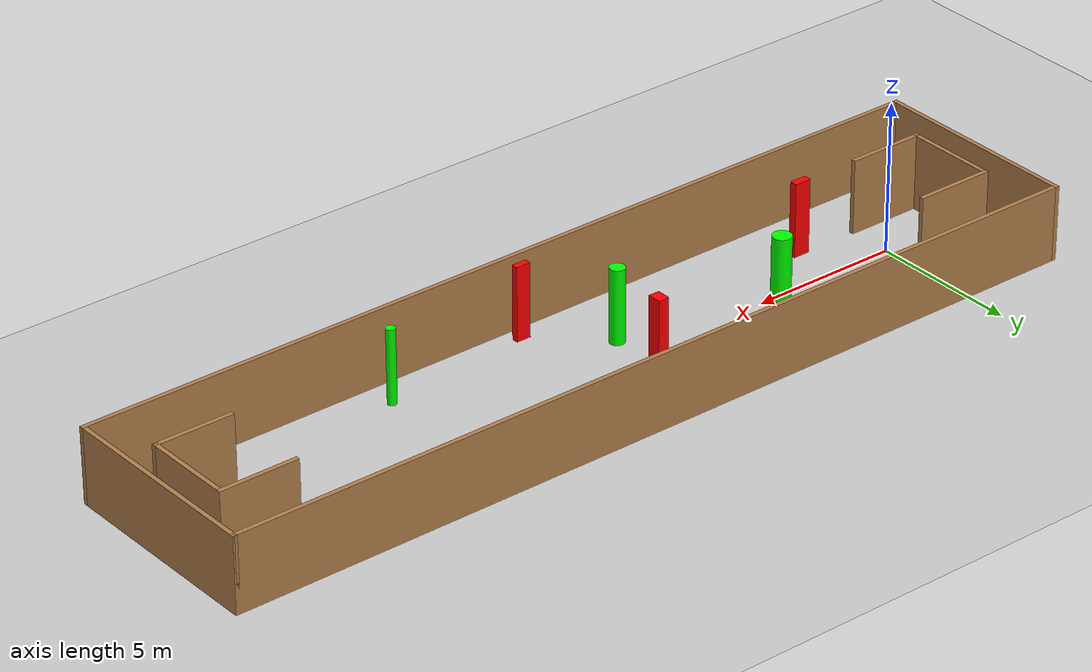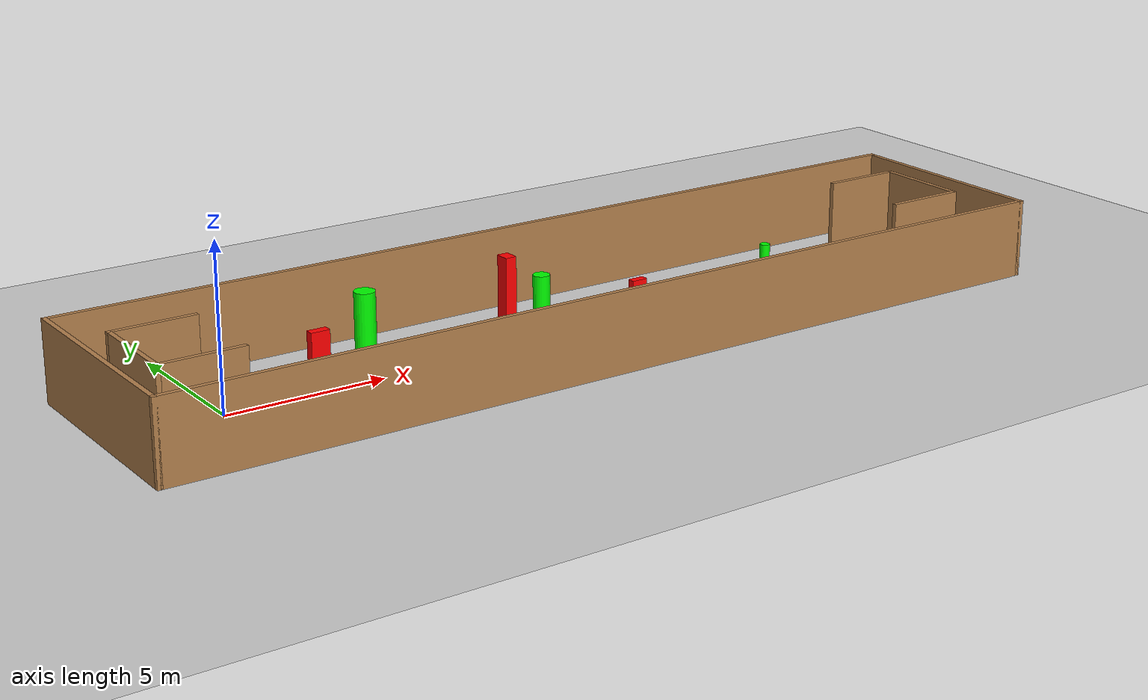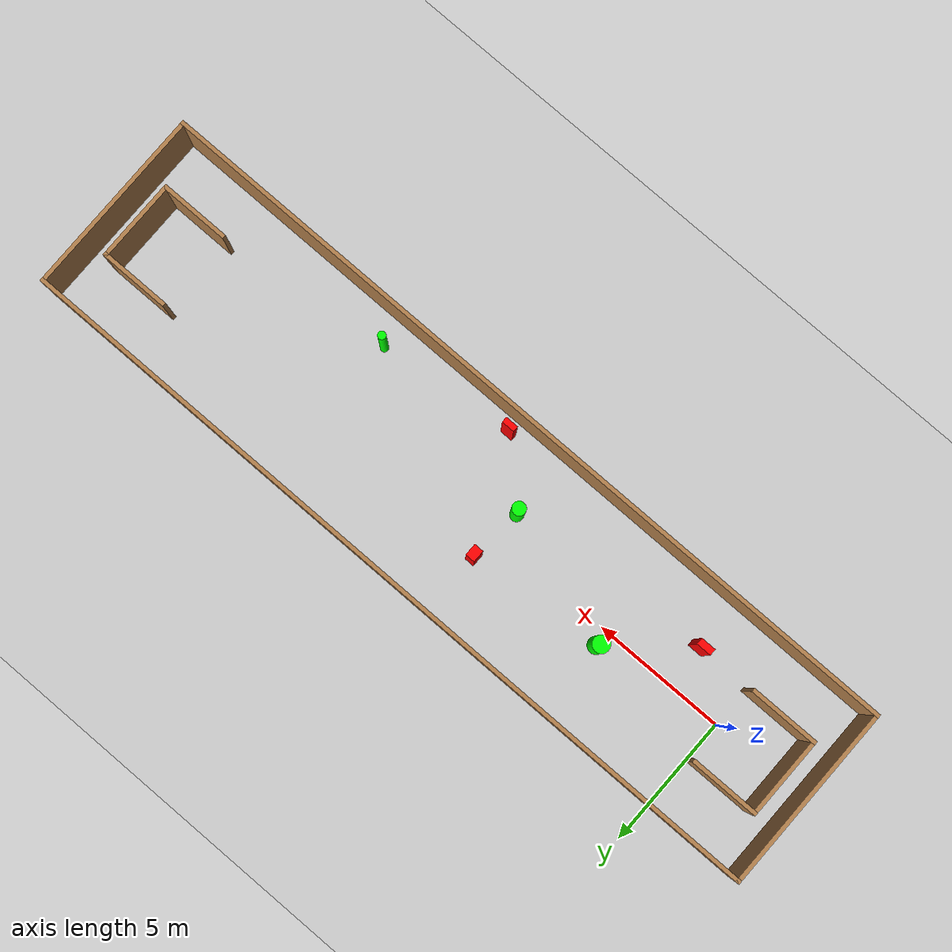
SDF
<sdf version="1.7">
 <world name="default">
  <light name="sun" type="directional">
   <pose>0 0 10 0 -0 0</pose>
   <diffuse>0.8 0.8 0.8 1</diffuse>
   <specular>0.2 0.2 0.2 1</specular>
   <attenuation>
    <range>1000</range>
    <constant>0.9</constant>
    <linear>0.01</linear>
    <quadratic>0.001</quadratic>
   </attenuation>
   <direction>-0.5 0.1 -0.9</direction>
   <spot><inner_angle>0</inner_angle><outer_angle>0</outer_angle><falloff>0</falloff></spot>
  </light>
  <model name="ground_plane">
   <static>1</static>
   <link name="link">
    <collision name="collision">
     <geometry><plane><normal>0 0 1</normal><size>100 100</size></plane></geometry>
     <surface>
      <contact><collide_bitmask>65535</collide_bitmask></contact>
      <friction><ode><mu>100</mu><mu2>50</mu2></ode></friction>
     </surface>
    </collision>
    <visual name="visual">
     <cast_shadows>0</cast_shadows>
     <geometry><plane><normal>0 0 1</normal><size>100 100</size></plane></geometry>
     <material>
      <script><uri>file://media/materials/scripts/gazebo.material</uri><name>Gazebo/Grey</name></script>
     </material>
    </visual>
   </link>
  </model>
  <gravity>0 0 -9.8</gravity>
  <magnetic_field>6e-06 2.3e-05 -4.2e-05</magnetic_field>
  <atmosphere type="adiabatic"/>
  <physics type="ode">
   <max_step_size>0.001</max_step_size>
   <real_time_factor>1</real_time_factor>
   <real_time_update_rate>1000</real_time_update_rate>
  </physics>
  <scene><ambient>0.4 0.4 0.4 1</ambient><background>0.7 0.7 0.7 1</background><shadows>1</shadows></scene>
  <spherical_coordinates>
   <surface_model>EARTH_WGS84</surface_model>
   <latitude_deg>0</latitude_deg>
   <longitude_deg>0</longitude_deg>
   <elevation>0</elevation>
   <heading_deg>0</heading_deg>
  </spherical_coordinates>
  <model name="my_base_walls">
   <link name="Wall_0">
    <collision name="Wall_0_Collision">
     <geometry><box><size>7.15 0.15 2.5</size></box></geometry>
     <pose>0 0 1.25 0 -0 0</pose>
    </collision>
    <visual name="Wall_0_Visual">
     <pose>0 0 1.25 0 -0 0</pose>
     <geometry><box><size>7.15 0.15 2.5</size></box></geometry>
     <material>
      <script><uri>file://media/materials/scripts/gazebo.material</uri><name>Gazebo/Wood</name></script>
      <ambient>1 1 1 1</ambient>
     </material>
     <meta><layer>0</layer></meta>
    </visual>
    <pose>-15 0 0 0 -0 1.5708</pose>
   </link>
   <link name="Wall_10">
    <collision name="Wall_10_Collision">
     <geometry><box><size>2.65 0.15 2.5</size></box></geometry>
     <pose>0 0 1.25 0 -0 0</pose>
    </collision>
    <visual name="Wall_10_Visual">
     <pose>0 0 1.25 0 -0 0</pose>
     <geometry><box><size>2.65 0.15 2.5</size></box></geometry>
     <material>
      <script><uri>file://media/materials/scripts/gazebo.material</uri><name>Gazebo/Wood</name></script>
      <ambient>1 1 1 1</ambient>
     </material>
     <meta><layer>0</layer></meta>
    </visual>
    <pose>-12.75 -1.5 0 0 -0 0</pose>
   </link>
   <link name="Wall_12">
    <collision name="Wall_12_Collision">
     <geometry><box><size>2.65 0.15 2.5</size></box></geometry>
     <pose>0 0 1.25 0 -0 0</pose>
    </collision>
    <visual name="Wall_12_Visual">
     <pose>0 0 1.25 0 -0 0</pose>
     <geometry><box><size>2.65 0.15 2.5</size></box></geometry>
     <material>
      <script><uri>file://media/materials/scripts/gazebo.material</uri><name>Gazebo/Wood</name></script>
      <ambient>1 1 1 1</ambient>
     </material>
     <meta><layer>0</layer></meta>
    </visual>
    <pose>-12.75 1.5 0 0 -0 0</pose>
   </link>
   <link name="Wall_14">
    <collision name="Wall_14_Collision">
     <geometry><box><size>3.15 0.15 2.5</size></box></geometry>
     <pose>0 0 1.25 0 -0 0</pose>
    </collision>
    <visual name="Wall_14_Visual">
     <pose>0 0 1.25 0 -0 0</pose>
     <geometry><box><size>3.15 0.15 2.5</size></box></geometry>
     <material>
      <script><uri>file://media/materials/scripts/gazebo.material</uri><name>Gazebo/Wood</name></script>
      <ambient>1 1 1 1</ambient>
     </material>
     <meta><layer>0</layer></meta>
    </visual>
    <pose>14 0 0 0 -0 -1.5708</pose>
   </link>
   <link name="Wall_15">
    <collision name="Wall_15_Collision">
     <geometry><box><size>2.65 0.15 2.5</size></box></geometry>
     <pose>0 0 1.25 0 -0 0</pose>
    </collision>
    <visual name="Wall_15_Visual">
     <pose>0 0 1.25 0 -0 0</pose>
     <geometry><box><size>2.65 0.15 2.5</size></box></geometry>
     <material>
      <script><uri>file://media/materials/scripts/gazebo.material</uri><name>Gazebo/Wood</name></script>
      <ambient>1 1 1 1</ambient>
     </material>
     <meta><layer>0</layer></meta>
    </visual>
    <pose>12.75 -1.5 0 0 -0 3.14159</pose>
   </link>
   <link name="Wall_17">
    <collision name="Wall_17_Collision">
     <geometry><box><size>2.65 0.15 2.5</size></box></geometry>
     <pose>0 0 1.25 0 -0 0</pose>
    </collision>
    <visual name="Wall_17_Visual">
     <pose>0 0 1.25 0 -0 0</pose>
     <geometry><box><size>2.65 0.15 2.5</size></box></geometry>
     <material>
      <script><uri>file://media/materials/scripts/gazebo.material</uri><name>Gazebo/Wood</name></script>
      <ambient>1 1 1 1</ambient>
     </material>
     <meta><layer>0</layer></meta>
    </visual>
    <pose>12.75 1.5 0 0 -0 3.14159</pose>
   </link>
   <link name="Wall_2">
    <collision name="Wall_2_Collision">
     <geometry><box><size>30.15 0.15 2.5</size></box></geometry>
     <pose>0 0 1.25 0 -0 0</pose>
    </collision>
    <visual name="Wall_2_Visual">
     <pose>0 0 1.25 0 -0 0</pose>
     <geometry><box><size>30.15 0.15 2.5</size></box></geometry>
     <material>
      <script><uri>file://media/materials/scripts/gazebo.material</uri><name>Gazebo/Wood</name></script>
      <ambient>1 1 1 1</ambient>
     </material>
     <meta><layer>0</layer></meta>
    </visual>
    <pose>-0 -3.5 0 0 -0 0</pose>
   </link>
   <link name="Wall_4">
    <collision name="Wall_4_Collision">
     <geometry><box><size>30.15 0.15 2.5</size></box></geometry>
     <pose>0 0 1.25 0 -0 0</pose>
    </collision>
    <visual name="Wall_4_Visual">
     <pose>0 0 1.25 0 -0 0</pose>
     <geometry><box><size>30.15 0.15 2.5</size></box></geometry>
     <material>
      <script><uri>file://media/materials/scripts/gazebo.material</uri><name>Gazebo/Wood</name></script>
      <ambient>1 1 1 1</ambient>
     </material>
     <meta><layer>0</layer></meta>
    </visual>
    <pose>-0 3.5 0 0 -0 0</pose>
   </link>
   <link name="Wall_6">
    <collision name="Wall_6_Collision">
     <geometry><box><size>7.15 0.15 2.5</size></box></geometry>
     <pose>0 0 1.25 0 -0 0</pose>
    </collision>
    <visual name="Wall_6_Visual">
     <pose>0 0 1.25 0 -0 0</pose>
     <geometry><box><size>7.15 0.15 2.5</size></box></geometry>
     <material>
      <script><uri>file://media/materials/scripts/gazebo.material</uri><name>Gazebo/Wood</name></script>
      <ambient>1 1 1 1</ambient>
     </material>
     <meta><layer>0</layer></meta>
    </visual>
    <pose>15 0 0 0 -0 -1.5708</pose>
   </link>
   <link name="Wall_9">
    <collision name="Wall_9_Collision">
     <geometry><box><size>3.15 0.15 2.5</size></box></geometry>
     <pose>0 0 1.25 0 -0 0</pose>
    </collision>
    <visual name="Wall_9_Visual">
     <pose>0 0 1.25 0 -0 0</pose>
     <geometry><box><size>3.15 0.15 2.5</size></box></geometry>
     <material>
      <script><uri>file://media/materials/scripts/gazebo.material</uri><name>Gazebo/Wood</name></script>
      <ambient>1 1 1 1</ambient>
     </material>
     <meta><layer>0</layer></meta>
    </visual>
    <pose>-14 0 0 0 -0 -1.5708</pose>
   </link>
   <static>1</static>
   <pose>11.5 0 0 0 -0 0</pose>
  </model>
  <model name="cylinder1">
   <static>1</static>
   <link name="link">
    <inertial>
     <mass>1</mass>
     <inertia><ixx>0.5</ixx><ixy>0</ixy><ixz>0</ixz><iyy>0.5</iyy><iyz>0</iyz><izz>1</izz></inertia>
    </inertial>
    <collision name="collision">
     <geometry><cylinder><radius>0.24986210340976917</radius><length>2.5</length></cylinder></geometry>
    </collision>
    <visual name="visual">
     <geometry><cylinder><radius>0.24986210340976917</radius><length>2.5</length></cylinder></geometry>
     <material>
      <ambient>0 1 0 1</ambient>
      <diffuse>0 1 0 1</diffuse>
      <specular>0.1 0.1 0.1 1</specular>
      <emissive>0 0 0 0</emissive>
     </material>
    </visual>
   </link>
   <pose>9.660442989753099 -1.0237023787065072 1.25 0 0 0</pose>
  </model>
  <model name="cylinder2">
   <static>1</static>
   <link name="link">
    <inertial>
     <mass>1</mass>
     <inertia><ixx>0.5</ixx><ixy>0</ixy><ixz>0</ixz><iyy>0.5</iyy><iyz>0</iyz><izz>1</izz></inertia>
    </inertial>
    <collision name="collision">
     <geometry><cylinder><radius>0.31356193696029433</radius><length>2.5</length></cylinder></geometry>
    </collision>
    <visual name="visual">
     <geometry><cylinder><radius>0.31356193696029433</radius><length>2.5</length></cylinder></geometry>
     <material>
      <ambient>0 1 0 1</ambient>
      <diffuse>0 1 0 1</diffuse>
      <specular>0.1 0.1 0.1 1</specular>
      <emissive>0 0 0 0</emissive>
     </material>
    </visual>
   </link>
   <pose>4.757396533002982 0.5903919744923645 1.25 0 0 0</pose>
  </model>
  <model name="cylinder3">
   <static>1</static>
   <link name="link">
    <inertial>
     <mass>1</mass>
     <inertia><ixx>0.5</ixx><ixy>0</ixy><ixz>0</ixz><iyy>0.5</iyy><iyz>0</iyz><izz>1</izz></inertia>
    </inertial>
    <collision name="collision">
     <geometry><cylinder><radius>0.15002525994485996</radius><length>2.5</length></cylinder></geometry>
    </collision>
    <visual name="visual">
     <geometry><cylinder><radius>0.15002525994485996</radius><length>2.5</length></cylinder></geometry>
     <material>
      <ambient>0 1 0 1</ambient>
      <diffuse>0 1 0 1</diffuse>
      <specular>0.1 0.1 0.1 1</specular>
      <emissive>0 0 0 0</emissive>
     </material>
    </visual>
   </link>
   <pose>16.813279242370847 -2.419673830316203 1.25 0 0 0</pose>
  </model>
  <model name="box1">
   <static>1</static>
   <link name="link">
    <inertial>
     <mass>1</mass>
     <inertia><ixx>0.083</ixx><ixy>0</ixy><ixz>0</ixz><iyy>0.083</iyy><iyz>0</iyz><izz>0.083</izz></inertia>
    </inertial>
    <collision name="collision">
     <geometry><box><size>0.5675571350907787 0.2549118038144349 2.5</size></box></geometry>
    </collision>
    <visual name="visual">
     <geometry><box><size>0.5675571350907787 0.2549118038144349 2.5</size></box></geometry>
     <material>
      <ambient>1 0 0 1</ambient>
      <diffuse>1 0 0 1</diffuse>
      <specular>0.1 0.1 0.1 1</specular>
      <emissive>0 0 0 0</emissive>
     </material>
    </visual>
    <sensor name="my_contact" type="contact">
     <contact><collision>box_collision</collision><topic>__default_topic__</topic></contact>
    </sensor>
   </link>
   <pose>2.129095211167712 -1.568923311732978 1.25 0 0 0</pose>
  </model>
  <model name="box2">
   <static>1</static>
   <link name="link">
    <inertial>
     <mass>1</mass>
     <inertia><ixx>0.083</ixx><ixy>0</ixy><ixz>0</ixz><iyy>0.083</iyy><iyz>0</iyz><izz>0.083</izz></inertia>
    </inertial>
    <collision name="collision">
     <geometry><box><size>0.4909821585397273 0.21726280200372955 2.5</size></box></geometry>
    </collision>
    <visual name="visual">
     <geometry><box><size>0.4909821585397273 0.21726280200372955 2.5</size></box></geometry>
     <material>
      <ambient>1 0 0 1</ambient>
      <diffuse>1 0 0 1</diffuse>
      <specular>0.1 0.1 0.1 1</specular>
      <emissive>0 0 0 0</emissive>
     </material>
    </visual>
    <sensor name="my_contact" type="contact">
     <contact><collision>box_collision</collision><topic>__default_topic__</topic></contact>
    </sensor>
   </link>
   <pose>11.690476143071669 -2.9341964448067333 1.25 0 0 0</pose>
  </model>
  <model name="box3">
   <static>1</static>
   <link name="link">
    <inertial>
     <mass>1</mass>
     <inertia><ixx>0.083</ixx><ixy>0</ixy><ixz>0</ixz><iyy>0.083</iyy><iyz>0</iyz><izz>0.083</izz></inertia>
    </inertial>
    <collision name="collision">
     <geometry><box><size>0.35907390416772733 0.45923797263087657 2.5</size></box></geometry>
    </collision>
    <visual name="visual">
     <geometry><box><size>0.35907390416772733 0.45923797263087657 2.5</size></box></geometry>
     <material>
      <ambient>1 0 0 1</ambient>
      <diffuse>1 0 0 1</diffuse>
      <specular>0.1 0.1 0.1 1</specular>
      <emissive>0 0 0 0</emissive>
     </material>
    </visual>
    <sensor name="my_contact" type="contact">
     <contact><collision>box_collision</collision><topic>__default_topic__</topic></contact>
    </sensor>
   </link>
   <pose>9.819129896042096 1.031497552719216 1.25 0 0 0</pose>
  </model>
 </world>
</sdf>
